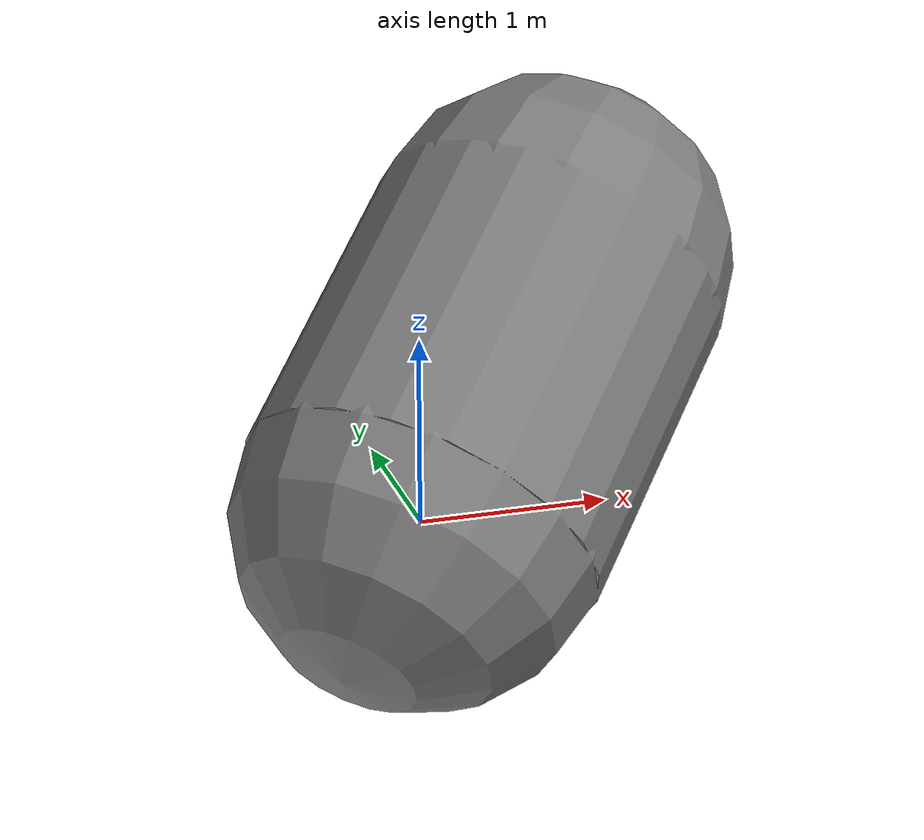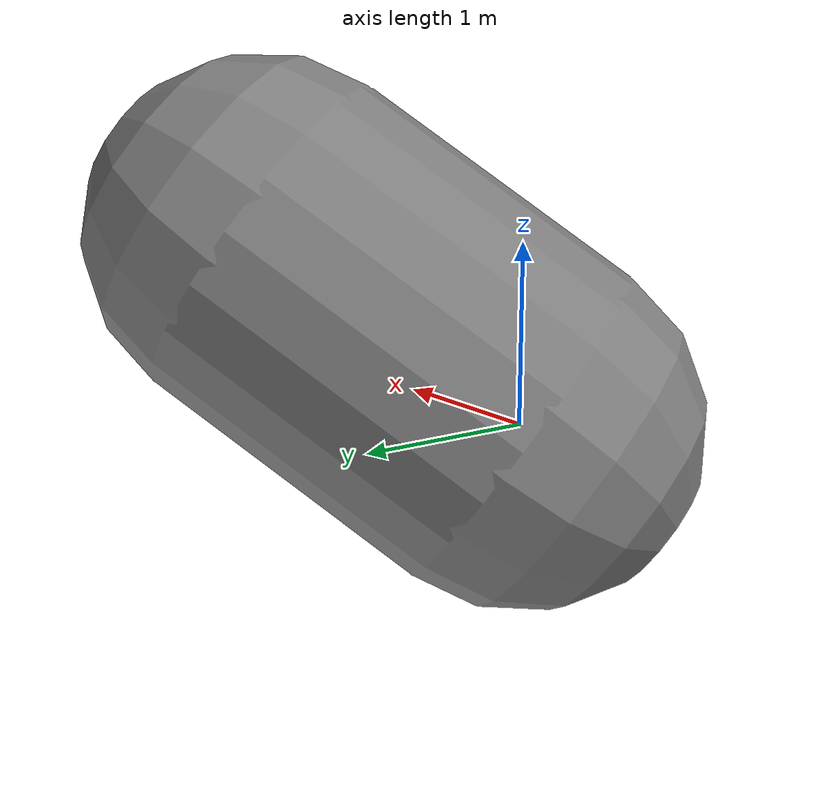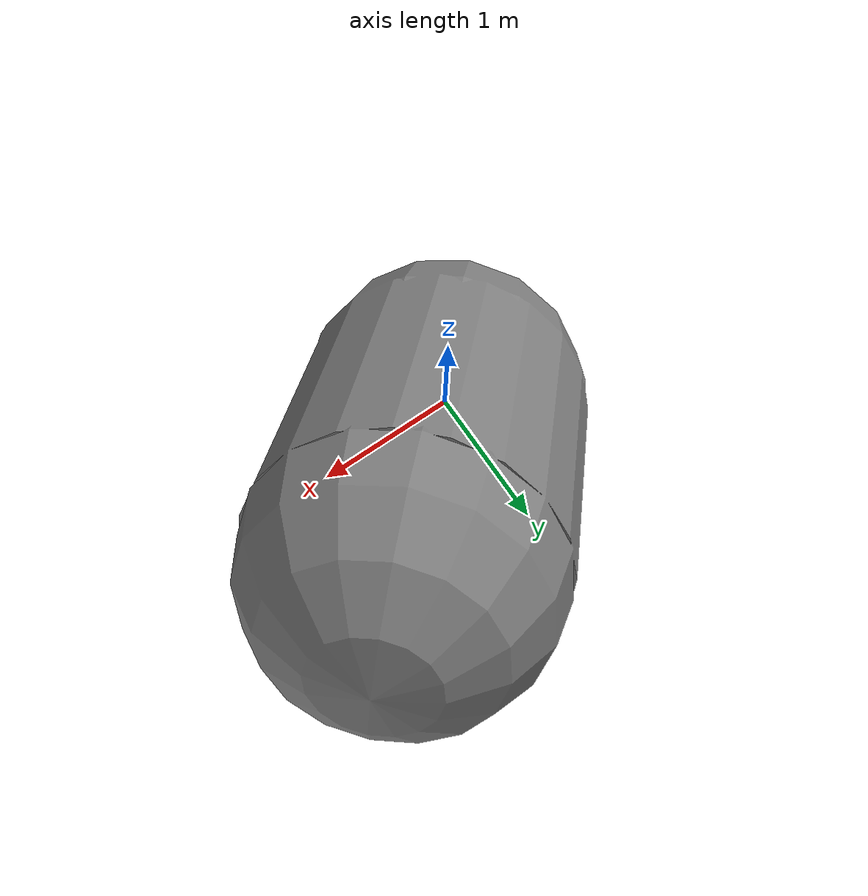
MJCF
<mujoco model="simple">
  <compiler inertiafromgeom="true" angle="degree" coordinate="local" />
  <option timestep="0.02" integrator="RK4" />
  <worldbody>
    <body>
      <geom name="ha" type="capsule" size="1" fromto="0 0 0 1 1 1"/>
      <joint name="hi" type="hinge" />
    </body>
  </worldbody>
  <actuator>
    <motor joint="hi" ctrlrange="-30.0 30.0" ctrllimited="true" />
  </actuator>
</mujoco>
